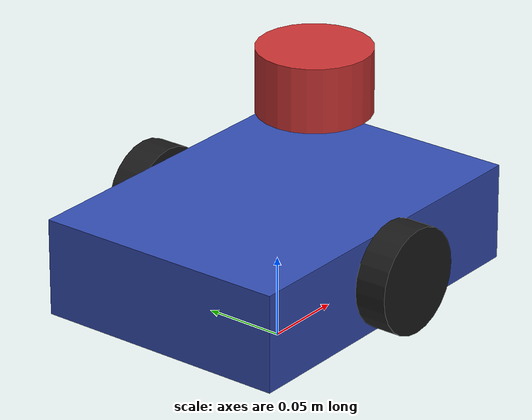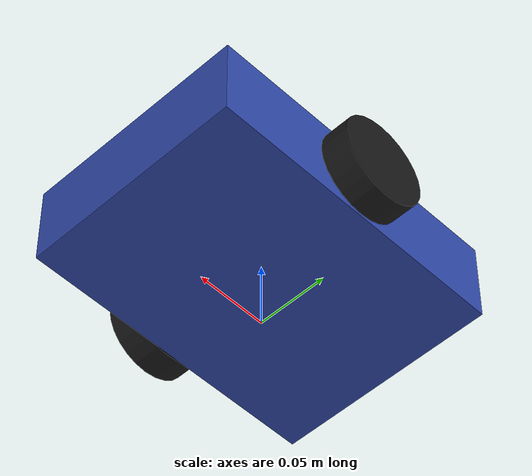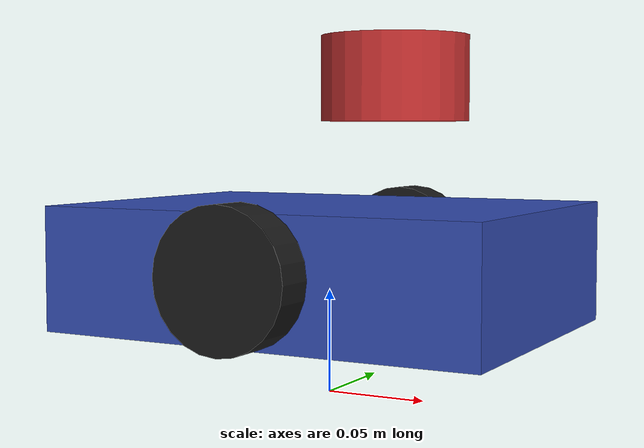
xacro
<?xml version="1.0"?>
<robot name="navbot" xmlns:xacro="http://www.ros.org/wiki/xacro">
  <xacro:property name="base_length" value="0.22"/>
  <xacro:property name="base_width" value="0.16"/>
  <xacro:property name="base_height" value="0.06"/>
  <xacro:property name="wheel_radius" value="0.0325"/>
  <xacro:property name="wheel_width" value="0.02"/>
  <xacro:property name="wheel_offset_y" value="0.091"/>
  <xacro:property name="wheel_offset_x" value="0.0"/>
  <xacro:property name="laser_height" value="0.12"/>

  <link name="base_footprint"/>

  <joint name="base_footprint_joint" type="fixed">
    <parent link="base_footprint"/>
    <child link="base_link"/>
    <origin xyz="0 0 ${wheel_radius}" rpy="0 0 0"/>
  </joint>

  <link name="base_link">
    <visual>
      <origin xyz="0 0 ${base_height / 2.0}" rpy="0 0 0"/>
      <geometry>
        <box size="${base_length} ${base_width} ${base_height}"/>
      </geometry>
      <material name="chassis_blue">
        <color rgba="0.2 0.3 0.7 1.0"/>
      </material>
    </visual>
    <collision>
      <origin xyz="0 0 ${base_height / 2.0}" rpy="0 0 0"/>
      <geometry>
        <box size="${base_length} ${base_width} ${base_height}"/>
      </geometry>
    </collision>
    <inertial>
      <origin xyz="0 0 ${base_height / 2.0}" rpy="0 0 0"/>
      <mass value="2.5"/>
      <inertia ixx="0.03" ixy="0.0" ixz="0.0" iyy="0.05" iyz="0.0" izz="0.06"/>
    </inertial>
  </link>

  <joint name="left_wheel_joint" type="continuous">
    <parent link="base_link"/>
    <child link="left_wheel_link"/>
    <origin xyz="${wheel_offset_x} ${wheel_offset_y} ${wheel_radius}" rpy="1.57079632679 0 0"/>
    <axis xyz="0 0 1"/>
  </joint>

  <link name="left_wheel_link">
    <visual>
      <geometry>
        <cylinder radius="${wheel_radius}" length="${wheel_width}"/>
      </geometry>
      <material name="wheel_black">
        <color rgba="0.1 0.1 0.1 1.0"/>
      </material>
    </visual>
    <collision>
      <geometry>
        <cylinder radius="${wheel_radius}" length="${wheel_width}"/>
      </geometry>
    </collision>
    <inertial>
      <mass value="0.15"/>
      <inertia ixx="0.0002" ixy="0.0" ixz="0.0" iyy="0.0002" iyz="0.0" izz="0.0001"/>
    </inertial>
  </link>

  <joint name="right_wheel_joint" type="continuous">
    <parent link="base_link"/>
    <child link="right_wheel_link"/>
    <origin xyz="${wheel_offset_x} ${-wheel_offset_y} ${wheel_radius}" rpy="1.57079632679 0 0"/>
    <axis xyz="0 0 1"/>
  </joint>

  <link name="right_wheel_link">
    <visual>
      <geometry>
        <cylinder radius="${wheel_radius}" length="${wheel_width}"/>
      </geometry>
      <material name="wheel_black">
        <color rgba="0.1 0.1 0.1 1.0"/>
      </material>
    </visual>
    <collision>
      <geometry>
        <cylinder radius="${wheel_radius}" length="${wheel_width}"/>
      </geometry>
    </collision>
    <inertial>
      <mass value="0.15"/>
      <inertia ixx="0.0002" ixy="0.0" ixz="0.0" iyy="0.0002" iyz="0.0" izz="0.0001"/>
    </inertial>
  </link>

  <joint name="caster_joint" type="fixed">
    <parent link="base_link"/>
    <child link="caster_link"/>
    <origin xyz="-0.08 0 0.015" rpy="0 0 0"/>
  </joint>

  <link name="caster_link">
    <visual>
      <geometry>
        <sphere radius="0.015"/>
      </geometry>
      <material name="caster_gray">
        <color rgba="0.5 0.5 0.5 1.0"/>
      </material>
    </visual>
    <collision>
      <geometry>
        <sphere radius="0.015"/>
      </geometry>
    </collision>
    <inertial>
      <mass value="0.05"/>
      <inertia ixx="0.00001" ixy="0.0" ixz="0.0" iyy="0.00001" iyz="0.0" izz="0.00001"/>
    </inertial>
  </link>

  <joint name="imu_joint" type="fixed">
    <parent link="base_link"/>
    <child link="imu_link"/>
    <origin xyz="0.0 0.0 ${base_height}" rpy="0 0 0"/>
  </joint>

  <link name="imu_link"/>

  <joint name="laser_joint" type="fixed">
    <parent link="base_link"/>
    <child link="laser_link"/>
    <origin xyz="0.035 0 ${laser_height}" rpy="0 0 0"/>
  </joint>

  <link name="laser_link">
    <visual>
      <geometry>
        <cylinder radius="0.035" length="0.04"/>
      </geometry>
      <material name="laser_red">
        <color rgba="0.8 0.2 0.2 1.0"/>
      </material>
    </visual>
    <collision>
      <geometry>
        <cylinder radius="0.035" length="0.04"/>
      </geometry>
    </collision>
    <inertial>
      <mass value="0.12"/>
      <inertia ixx="0.00005" ixy="0.0" ixz="0.0" iyy="0.00005" iyz="0.0" izz="0.00008"/>
    </inertial>
  </link>
</robot>
